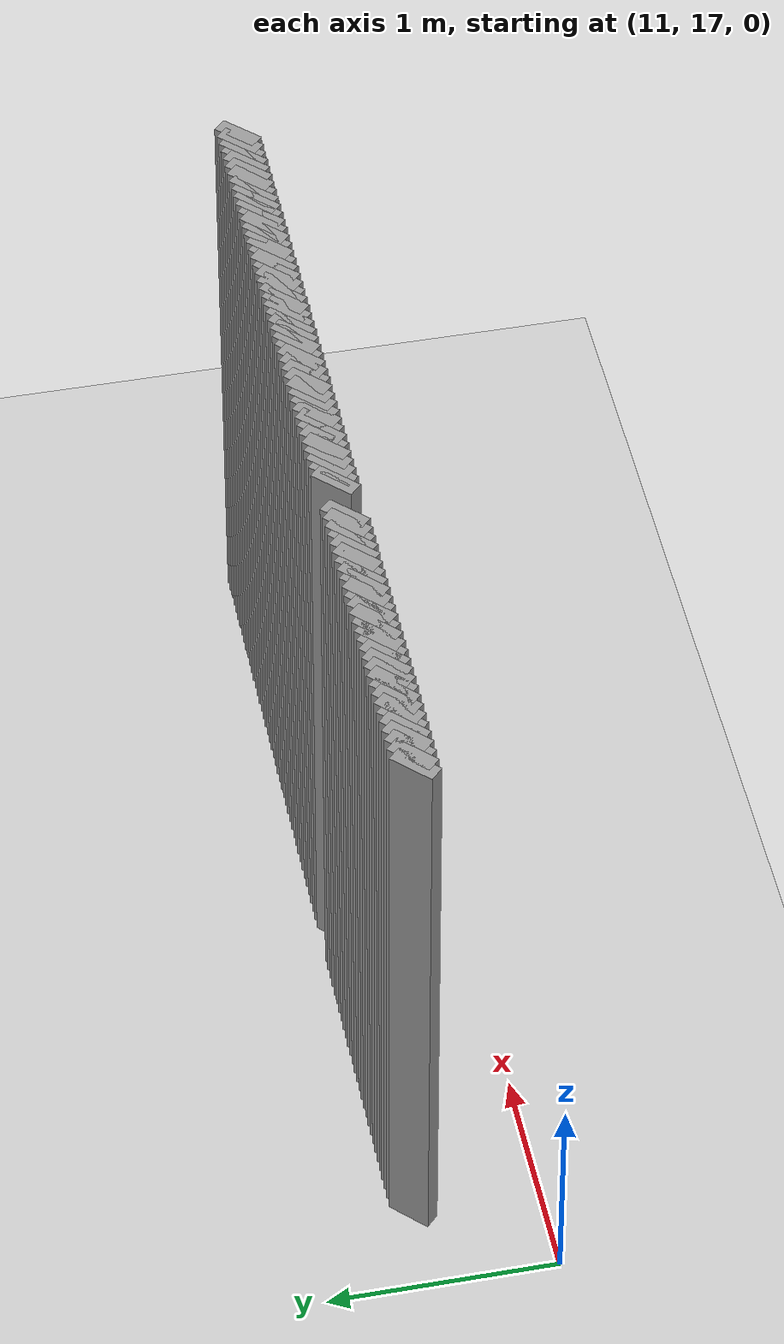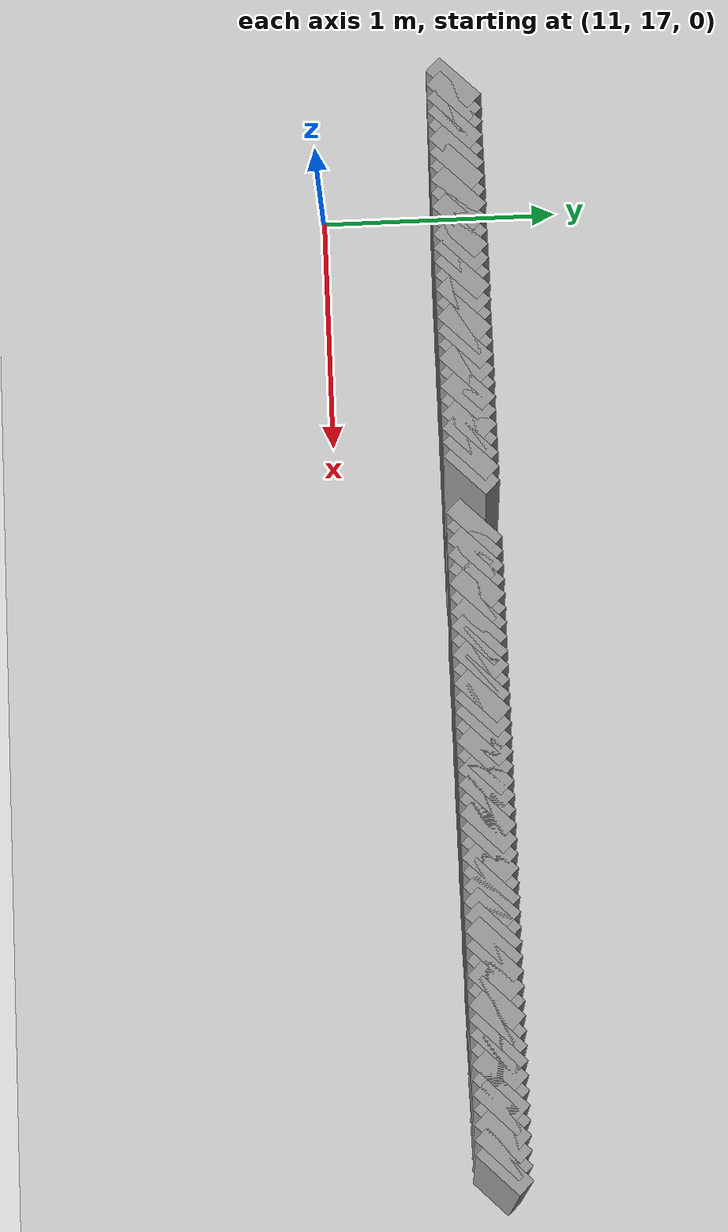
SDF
<sdf version="1.5">
 <world name="default">
  <include><uri>model://ground_plane</uri></include>
  <include><uri>model://sun</uri></include>
  <model name="grey_wall_150">
   <static>1</static>
   <link name="link">
    <pose>11.4 17.55  1.4 0 0 -0.7853981633974128</pose>
    <collision name="collision">
     <geometry><box><size>0.07071067811865325 .2  2.8</size></box></geometry>
    </collision>
    <visual name="visual">
     <cast_shadows>0</cast_shadows>
     <geometry><box><size>0.07071067811865325 .2  2.8</size></box></geometry>
     <material>
      <script>
       <uri>model://grey_wall/materials/scripts</uri>
       <uri>model://grey_wall/materials/textures</uri>
       <name>vrc/grey_wall</name>
      </script>
     </material>
    </visual>
   </link>
  </model>
  <model name="grey_wall_151">
   <static>1</static>
   <link name="link">
    <pose>11.450000000000001 17.55  1.4 0 0 -0.7853981633974128</pose>
    <collision name="collision">
     <geometry><box><size>0.07071067811865325 .2  2.8</size></box></geometry>
    </collision>
    <visual name="visual">
     <cast_shadows>0</cast_shadows>
     <geometry><box><size>0.07071067811865325 .2  2.8</size></box></geometry>
     <material>
      <script>
       <uri>model://grey_wall/materials/scripts</uri>
       <uri>model://grey_wall/materials/textures</uri>
       <name>vrc/grey_wall</name>
      </script>
     </material>
    </visual>
   </link>
  </model>
  <model name="grey_wall_152">
   <static>1</static>
   <link name="link">
    <pose>11.5 17.55  1.4 0 0 -0.7853981633974128</pose>
    <collision name="collision">
     <geometry><box><size>0.07071067811865325 .2  2.8</size></box></geometry>
    </collision>
    <visual name="visual">
     <cast_shadows>0</cast_shadows>
     <geometry><box><size>0.07071067811865325 .2  2.8</size></box></geometry>
     <material>
      <script>
       <uri>model://grey_wall/materials/scripts</uri>
       <uri>model://grey_wall/materials/textures</uri>
       <name>vrc/grey_wall</name>
      </script>
     </material>
    </visual>
   </link>
  </model>
  <model name="grey_wall_153">
   <static>1</static>
   <link name="link">
    <pose>11.55 17.55  1.4 0 0 -0.7853981633974128</pose>
    <collision name="collision">
     <geometry><box><size>0.07071067811865325 .2  2.8</size></box></geometry>
    </collision>
    <visual name="visual">
     <cast_shadows>0</cast_shadows>
     <geometry><box><size>0.07071067811865325 .2  2.8</size></box></geometry>
     <material>
      <script>
       <uri>model://grey_wall/materials/scripts</uri>
       <uri>model://grey_wall/materials/textures</uri>
       <name>vrc/grey_wall</name>
      </script>
     </material>
    </visual>
   </link>
  </model>
  <model name="grey_wall_154">
   <static>1</static>
   <link name="link">
    <pose>11.600000000000001 17.55  1.4 0 0 -0.7853981633974128</pose>
    <collision name="collision">
     <geometry><box><size>0.07071067811865325 .2  2.8</size></box></geometry>
    </collision>
    <visual name="visual">
     <cast_shadows>0</cast_shadows>
     <geometry><box><size>0.07071067811865325 .2  2.8</size></box></geometry>
     <material>
      <script>
       <uri>model://grey_wall/materials/scripts</uri>
       <uri>model://grey_wall/materials/textures</uri>
       <name>vrc/grey_wall</name>
      </script>
     </material>
    </visual>
   </link>
  </model>
  <model name="grey_wall_155">
   <static>1</static>
   <link name="link">
    <pose>11.65 17.55  1.4 0 0 -0.7853981633974128</pose>
    <collision name="collision">
     <geometry><box><size>0.07071067811865325 .2  2.8</size></box></geometry>
    </collision>
    <visual name="visual">
     <cast_shadows>0</cast_shadows>
     <geometry><box><size>0.07071067811865325 .2  2.8</size></box></geometry>
     <material>
      <script>
       <uri>model://grey_wall/materials/scripts</uri>
       <uri>model://grey_wall/materials/textures</uri>
       <name>vrc/grey_wall</name>
      </script>
     </material>
    </visual>
   </link>
  </model>
  <model name="grey_wall_156">
   <static>1</static>
   <link name="link">
    <pose>11.700000000000001 17.55  1.4 0 0 -0.7853981633974128</pose>
    <collision name="collision">
     <geometry><box><size>0.07071067811865325 .2  2.8</size></box></geometry>
    </collision>
    <visual name="visual">
     <cast_shadows>0</cast_shadows>
     <geometry><box><size>0.07071067811865325 .2  2.8</size></box></geometry>
     <material>
      <script>
       <uri>model://grey_wall/materials/scripts</uri>
       <uri>model://grey_wall/materials/textures</uri>
       <name>vrc/grey_wall</name>
      </script>
     </material>
    </visual>
   </link>
  </model>
  <model name="grey_wall_157">
   <static>1</static>
   <link name="link">
    <pose>11.75 17.55  1.4 0 0 -0.7853981633974128</pose>
    <collision name="collision">
     <geometry><box><size>0.07071067811865325 .2  2.8</size></box></geometry>
    </collision>
    <visual name="visual">
     <cast_shadows>0</cast_shadows>
     <geometry><box><size>0.07071067811865325 .2  2.8</size></box></geometry>
     <material>
      <script>
       <uri>model://grey_wall/materials/scripts</uri>
       <uri>model://grey_wall/materials/textures</uri>
       <name>vrc/grey_wall</name>
      </script>
     </material>
    </visual>
   </link>
  </model>
  <model name="grey_wall_158">
   <static>1</static>
   <link name="link">
    <pose>11.8 17.55  1.4 0 0 -0.7853981633974128</pose>
    <collision name="collision">
     <geometry><box><size>0.07071067811865325 .2  2.8</size></box></geometry>
    </collision>
    <visual name="visual">
     <cast_shadows>0</cast_shadows>
     <geometry><box><size>0.07071067811865325 .2  2.8</size></box></geometry>
     <material>
      <script>
       <uri>model://grey_wall/materials/scripts</uri>
       <uri>model://grey_wall/materials/textures</uri>
       <name>vrc/grey_wall</name>
      </script>
     </material>
    </visual>
   </link>
  </model>
  <model name="grey_wall_159">
   <static>1</static>
   <link name="link">
    <pose>11.850000000000001 17.55  1.4 0 0 -0.7853981633974128</pose>
    <collision name="collision">
     <geometry><box><size>0.07071067811865325 .2  2.8</size></box></geometry>
    </collision>
    <visual name="visual">
     <cast_shadows>0</cast_shadows>
     <geometry><box><size>0.07071067811865325 .2  2.8</size></box></geometry>
     <material>
      <script>
       <uri>model://grey_wall/materials/scripts</uri>
       <uri>model://grey_wall/materials/textures</uri>
       <name>vrc/grey_wall</name>
      </script>
     </material>
    </visual>
   </link>
  </model>
  <model name="grey_wall_160">
   <static>1</static>
   <link name="link">
    <pose>11.9 17.55  1.4 0 0 -0.7853981633974128</pose>
    <collision name="collision">
     <geometry><box><size>0.07071067811865325 .2  2.8</size></box></geometry>
    </collision>
    <visual name="visual">
     <cast_shadows>0</cast_shadows>
     <geometry><box><size>0.07071067811865325 .2  2.8</size></box></geometry>
     <material>
      <script>
       <uri>model://grey_wall/materials/scripts</uri>
       <uri>model://grey_wall/materials/textures</uri>
       <name>vrc/grey_wall</name>
      </script>
     </material>
    </visual>
   </link>
  </model>
  <model name="grey_wall_161">
   <static>1</static>
   <link name="link">
    <pose>11.950000000000001 17.55  1.4 0 0 -0.7853981633974128</pose>
    <collision name="collision">
     <geometry><box><size>0.07071067811865325 .2  2.8</size></box></geometry>
    </collision>
    <visual name="visual">
     <cast_shadows>0</cast_shadows>
     <geometry><box><size>0.07071067811865325 .2  2.8</size></box></geometry>
     <material>
      <script>
       <uri>model://grey_wall/materials/scripts</uri>
       <uri>model://grey_wall/materials/textures</uri>
       <name>vrc/grey_wall</name>
      </script>
     </material>
    </visual>
   </link>
  </model>
  <model name="grey_wall_162">
   <static>1</static>
   <link name="link">
    <pose>12.0 17.55  1.4 0 0 -0.7853981633974128</pose>
    <collision name="collision">
     <geometry><box><size>0.07071067811865325 .2  2.8</size></box></geometry>
    </collision>
    <visual name="visual">
     <cast_shadows>0</cast_shadows>
     <geometry><box><size>0.07071067811865325 .2  2.8</size></box></geometry>
     <material>
      <script>
       <uri>model://grey_wall/materials/scripts</uri>
       <uri>model://grey_wall/materials/textures</uri>
       <name>vrc/grey_wall</name>
      </script>
     </material>
    </visual>
   </link>
  </model>
  <model name="grey_wall_163">
   <static>1</static>
   <link name="link">
    <pose>12.05 17.55  1.4 0 0 -0.7853981633974128</pose>
    <collision name="collision">
     <geometry><box><size>0.07071067811865325 .2  2.8</size></box></geometry>
    </collision>
    <visual name="visual">
     <cast_shadows>0</cast_shadows>
     <geometry><box><size>0.07071067811865325 .2  2.8</size></box></geometry>
     <material>
      <script>
       <uri>model://grey_wall/materials/scripts</uri>
       <uri>model://grey_wall/materials/textures</uri>
       <name>vrc/grey_wall</name>
      </script>
     </material>
    </visual>
   </link>
  </model>
  <model name="grey_wall_164">
   <static>1</static>
   <link name="link">
    <pose>12.100000000000001 17.55  1.4 0 0 -0.7853981633974128</pose>
    <collision name="collision">
     <geometry><box><size>0.07071067811865325 .2  2.8</size></box></geometry>
    </collision>
    <visual name="visual">
     <cast_shadows>0</cast_shadows>
     <geometry><box><size>0.07071067811865325 .2  2.8</size></box></geometry>
     <material>
      <script>
       <uri>model://grey_wall/materials/scripts</uri>
       <uri>model://grey_wall/materials/textures</uri>
       <name>vrc/grey_wall</name>
      </script>
     </material>
    </visual>
   </link>
  </model>
  <model name="grey_wall_165">
   <static>1</static>
   <link name="link">
    <pose>12.15 17.55  1.4 0 0 -0.7853981633974128</pose>
    <collision name="collision">
     <geometry><box><size>0.07071067811865325 .2  2.8</size></box></geometry>
    </collision>
    <visual name="visual">
     <cast_shadows>0</cast_shadows>
     <geometry><box><size>0.07071067811865325 .2  2.8</size></box></geometry>
     <material>
      <script>
       <uri>model://grey_wall/materials/scripts</uri>
       <uri>model://grey_wall/materials/textures</uri>
       <name>vrc/grey_wall</name>
      </script>
     </material>
    </visual>
   </link>
  </model>
  <model name="grey_wall_166">
   <static>1</static>
   <link name="link">
    <pose>12.200000000000001 17.55  1.4 0 0 -0.7853981633974128</pose>
    <collision name="collision">
     <geometry><box><size>0.07071067811865325 .2  2.8</size></box></geometry>
    </collision>
    <visual name="visual">
     <cast_shadows>0</cast_shadows>
     <geometry><box><size>0.07071067811865325 .2  2.8</size></box></geometry>
     <material>
      <script>
       <uri>model://grey_wall/materials/scripts</uri>
       <uri>model://grey_wall/materials/textures</uri>
       <name>vrc/grey_wall</name>
      </script>
     </material>
    </visual>
   </link>
  </model>
  <model name="grey_wall_167">
   <static>1</static>
   <link name="link">
    <pose>12.25 17.55  1.4 0 0 -0.7853981633974128</pose>
    <collision name="collision">
     <geometry><box><size>0.07071067811865325 .2  2.8</size></box></geometry>
    </collision>
    <visual name="visual">
     <cast_shadows>0</cast_shadows>
     <geometry><box><size>0.07071067811865325 .2  2.8</size></box></geometry>
     <material>
      <script>
       <uri>model://grey_wall/materials/scripts</uri>
       <uri>model://grey_wall/materials/textures</uri>
       <name>vrc/grey_wall</name>
      </script>
     </material>
    </visual>
   </link>
  </model>
  <model name="grey_wall_168">
   <static>1</static>
   <link name="link">
    <pose>12.3 17.55  1.4 0 0 -0.7853981633974128</pose>
    <collision name="collision">
     <geometry><box><size>0.07071067811865325 .2  2.8</size></box></geometry>
    </collision>
    <visual name="visual">
     <cast_shadows>0</cast_shadows>
     <geometry><box><size>0.07071067811865325 .2  2.8</size></box></geometry>
     <material>
      <script>
       <uri>model://grey_wall/materials/scripts</uri>
       <uri>model://grey_wall/materials/textures</uri>
       <name>vrc/grey_wall</name>
      </script>
     </material>
    </visual>
   </link>
  </model>
  <model name="grey_wall_169">
   <static>1</static>
   <link name="link">
    <pose>12.350000000000001 17.55  1.4 0 0 -0.7853981633974128</pose>
    <collision name="collision">
     <geometry><box><size>0.07071067811865325 .2  2.8</size></box></geometry>
    </collision>
    <visual name="visual">
     <cast_shadows>0</cast_shadows>
     <geometry><box><size>0.07071067811865325 .2  2.8</size></box></geometry>
     <material>
      <script>
       <uri>model://grey_wall/materials/scripts</uri>
       <uri>model://grey_wall/materials/textures</uri>
       <name>vrc/grey_wall</name>
      </script>
     </material>
    </visual>
   </link>
  </model>
  <model name="grey_wall_170">
   <static>1</static>
   <link name="link">
    <pose>12.4 17.55  1.4 0 0 -0.7853981633974128</pose>
    <collision name="collision">
     <geometry><box><size>0.07071067811865325 .2  2.8</size></box></geometry>
    </collision>
    <visual name="visual">
     <cast_shadows>0</cast_shadows>
     <geometry><box><size>0.07071067811865325 .2  2.8</size></box></geometry>
     <material>
      <script>
       <uri>model://grey_wall/materials/scripts</uri>
       <uri>model://grey_wall/materials/textures</uri>
       <name>vrc/grey_wall</name>
      </script>
     </material>
    </visual>
   </link>
  </model>
  <model name="grey_wall_171">
   <static>1</static>
   <link name="link">
    <pose>12.450000000000001 17.55  1.4 0 0 -0.7853981633974128</pose>
    <collision name="collision">
     <geometry><box><size>0.07071067811865325 .2  2.8</size></box></geometry>
    </collision>
    <visual name="visual">
     <cast_shadows>0</cast_shadows>
     <geometry><box><size>0.07071067811865325 .2  2.8</size></box></geometry>
     <material>
      <script>
       <uri>model://grey_wall/materials/scripts</uri>
       <uri>model://grey_wall/materials/textures</uri>
       <name>vrc/grey_wall</name>
      </script>
     </material>
    </visual>
   </link>
  </model>
  <model name="grey_wall_172">
   <static>1</static>
   <link name="link">
    <pose>12.5 17.55  1.4 0 0 -0.7853981633974128</pose>
    <collision name="collision">
     <geometry><box><size>0.07071067811865325 .2  2.8</size></box></geometry>
    </collision>
    <visual name="visual">
     <cast_shadows>0</cast_shadows>
     <geometry><box><size>0.07071067811865325 .2  2.8</size></box></geometry>
     <material>
      <script>
       <uri>model://grey_wall/materials/scripts</uri>
       <uri>model://grey_wall/materials/textures</uri>
       <name>vrc/grey_wall</name>
      </script>
     </material>
    </visual>
   </link>
  </model>
  <model name="grey_wall_173">
   <static>1</static>
   <link name="link">
    <pose>12.55 17.55  1.4 0 0 -0.7853981633974128</pose>
    <collision name="collision">
     <geometry><box><size>0.07071067811865325 .2  2.8</size></box></geometry>
    </collision>
    <visual name="visual">
     <cast_shadows>0</cast_shadows>
     <geometry><box><size>0.07071067811865325 .2  2.8</size></box></geometry>
     <material>
      <script>
       <uri>model://grey_wall/materials/scripts</uri>
       <uri>model://grey_wall/materials/textures</uri>
       <name>vrc/grey_wall</name>
      </script>
     </material>
    </visual>
   </link>
  </model>
  <model name="grey_wall_174">
   <static>1</static>
   <link name="link">
    <pose>12.600000000000001 17.55  1.4 0 0 -0.7853981633974128</pose>
    <collision name="collision">
     <geometry><box><size>0.07071067811865325 .2  2.8</size></box></geometry>
    </collision>
    <visual name="visual">
     <cast_shadows>0</cast_shadows>
     <geometry><box><size>0.07071067811865325 .2  2.8</size></box></geometry>
     <material>
      <script>
       <uri>model://grey_wall/materials/scripts</uri>
       <uri>model://grey_wall/materials/textures</uri>
       <name>vrc/grey_wall</name>
      </script>
     </material>
    </visual>
   </link>
  </model>
  <model name="grey_wall_175">
   <static>1</static>
   <link name="link">
    <pose>12.65 17.55  1.4 0 0 -0.7853981633974128</pose>
    <collision name="collision">
     <geometry><box><size>0.07071067811865325 .2  2.8</size></box></geometry>
    </collision>
    <visual name="visual">
     <cast_shadows>0</cast_shadows>
     <geometry><box><size>0.07071067811865325 .2  2.8</size></box></geometry>
     <material>
      <script>
       <uri>model://grey_wall/materials/scripts</uri>
       <uri>model://grey_wall/materials/textures</uri>
       <name>vrc/grey_wall</name>
      </script>
     </material>
    </visual>
   </link>
  </model>
  <model name="grey_wall_176">
   <static>1</static>
   <link name="link">
    <pose>12.700000000000001 17.55  1.4 0 0 -0.7853981633974128</pose>
    <collision name="collision">
     <geometry><box><size>0.07071067811865325 .2  2.8</size></box></geometry>
    </collision>
    <visual name="visual">
     <cast_shadows>0</cast_shadows>
     <geometry><box><size>0.07071067811865325 .2  2.8</size></box></geometry>
     <material>
      <script>
       <uri>model://grey_wall/materials/scripts</uri>
       <uri>model://grey_wall/materials/textures</uri>
       <name>vrc/grey_wall</name>
      </script>
     </material>
    </visual>
   </link>
  </model>
  <model name="grey_wall_177">
   <static>1</static>
   <link name="link">
    <pose>12.75 17.55  1.4 0 0 -0.7853981633974128</pose>
    <collision name="collision">
     <geometry><box><size>0.07071067811865325 .2  2.8</size></box></geometry>
    </collision>
    <visual name="visual">
     <cast_shadows>0</cast_shadows>
     <geometry><box><size>0.07071067811865325 .2  2.8</size></box></geometry>
     <material>
      <script>
       <uri>model://grey_wall/materials/scripts</uri>
       <uri>model://grey_wall/materials/textures</uri>
       <name>vrc/grey_wall</name>
      </script>
     </material>
    </visual>
   </link>
  </model>
  <model name="grey_wall_178">
   <static>1</static>
   <link name="link">
    <pose>12.8 17.55  1.4 0 0 -0.7853981633974128</pose>
    <collision name="collision">
     <geometry><box><size>0.07071067811865325 .2  2.8</size></box></geometry>
    </collision>
    <visual name="visual">
     <cast_shadows>0</cast_shadows>
     <geometry><box><size>0.07071067811865325 .2  2.8</size></box></geometry>
     <material>
      <script>
       <uri>model://grey_wall/materials/scripts</uri>
       <uri>model://grey_wall/materials/textures</uri>
       <name>vrc/grey_wall</name>
      </script>
     </material>
    </visual>
   </link>
  </model>
  <model name="grey_wall_179">
   <static>1</static>
   <link name="link">
    <pose>13.0 17.55  1.4 0 0 -0.7853981633974128</pose>
    <collision name="collision">
     <geometry><box><size>0.07071067811865325 .2  2.8</size></box></geometry>
    </collision>
    <visual name="visual">
     <cast_shadows>0</cast_shadows>
     <geometry><box><size>0.07071067811865325 .2  2.8</size></box></geometry>
     <material>
      <script>
       <uri>model://grey_wall/materials/scripts</uri>
       <uri>model://grey_wall/materials/textures</uri>
       <name>vrc/grey_wall</name>
      </script>
     </material>
    </visual>
   </link>
  </model>
  <model name="grey_wall_180">
   <static>1</static>
   <link name="link">
    <pose>13.05 17.55  1.4 0 0 -0.7853981633974128</pose>
    <collision name="collision">
     <geometry><box><size>0.07071067811865325 .2  2.8</size></box></geometry>
    </collision>
    <visual name="visual">
     <cast_shadows>0</cast_shadows>
     <geometry><box><size>0.07071067811865325 .2  2.8</size></box></geometry>
     <material>
      <script>
       <uri>model://grey_wall/materials/scripts</uri>
       <uri>model://grey_wall/materials/textures</uri>
       <name>vrc/grey_wall</name>
      </script>
     </material>
    </visual>
   </link>
  </model>
  <model name="grey_wall_181">
   <static>1</static>
   <link name="link">
    <pose>13.100000000000001 17.55  1.4 0 0 -0.7853981633974128</pose>
    <collision name="collision">
     <geometry><box><size>0.07071067811865325 .2  2.8</size></box></geometry>
    </collision>
    <visual name="visual">
     <cast_shadows>0</cast_shadows>
     <geometry><box><size>0.07071067811865325 .2  2.8</size></box></geometry>
     <material>
      <script>
       <uri>model://grey_wall/materials/scripts</uri>
       <uri>model://grey_wall/materials/textures</uri>
       <name>vrc/grey_wall</name>
      </script>
     </material>
    </visual>
   </link>
  </model>
  <model name="grey_wall_182">
   <static>1</static>
   <link name="link">
    <pose>13.15 17.55  1.4 0 0 -0.7853981633974128</pose>
    <collision name="collision">
     <geometry><box><size>0.07071067811865325 .2  2.8</size></box></geometry>
    </collision>
    <visual name="visual">
     <cast_shadows>0</cast_shadows>
     <geometry><box><size>0.07071067811865325 .2  2.8</size></box></geometry>
     <material>
      <script>
       <uri>model://grey_wall/materials/scripts</uri>
       <uri>model://grey_wall/materials/textures</uri>
       <name>vrc/grey_wall</name>
      </script>
     </material>
    </visual>
   </link>
  </model>
  <model name="grey_wall_183">
   <static>1</static>
   <link name="link">
    <pose>13.200000000000001 17.55  1.4 0 0 -0.7853981633974128</pose>
    <collision name="collision">
     <geometry><box><size>0.07071067811865325 .2  2.8</size></box></geometry>
    </collision>
    <visual name="visual">
     <cast_shadows>0</cast_shadows>
     <geometry><box><size>0.07071067811865325 .2  2.8</size></box></geometry>
     <material>
      <script>
       <uri>model://grey_wall/materials/scripts</uri>
       <uri>model://grey_wall/materials/textures</uri>
       <name>vrc/grey_wall</name>
      </script>
     </material>
    </visual>
   </link>
  </model>
  <model name="grey_wall_184">
   <static>1</static>
   <link name="link">
    <pose>13.25 17.55  1.4 0 0 -0.7853981633974128</pose>
    <collision name="collision">
     <geometry><box><size>0.07071067811865325 .2  2.8</size></box></geometry>
    </collision>
    <visual name="visual">
     <cast_shadows>0</cast_shadows>
     <geometry><box><size>0.07071067811865325 .2  2.8</size></box></geometry>
     <material>
      <script>
       <uri>model://grey_wall/materials/scripts</uri>
       <uri>model://grey_wall/materials/textures</uri>
       <name>vrc/grey_wall</name>
      </script>
     </material>
    </visual>
   </link>
  </model>
  <model name="grey_wall_185">
   <static>1</static>
   <link name="link">
    <pose>13.3 17.55  1.4 0 0 -0.7853981633974128</pose>
    <collision name="collision">
     <geometry><box><size>0.07071067811865325 .2  2.8</size></box></geometry>
    </collision>
    <visual name="visual">
     <cast_shadows>0</cast_shadows>
     <geometry><box><size>0.07071067811865325 .2  2.8</size></box></geometry>
     <material>
      <script>
       <uri>model://grey_wall/materials/scripts</uri>
       <uri>model://grey_wall/materials/textures</uri>
       <name>vrc/grey_wall</name>
      </script>
     </material>
    </visual>
   </link>
  </model>
  <model name="grey_wall_186">
   <static>1</static>
   <link name="link">
    <pose>13.350000000000001 17.55  1.4 0 0 -0.7853981633974128</pose>
    <collision name="collision">
     <geometry><box><size>0.07071067811865325 .2  2.8</size></box></geometry>
    </collision>
    <visual name="visual">
     <cast_shadows>0</cast_shadows>
     <geometry><box><size>0.07071067811865325 .2  2.8</size></box></geometry>
     <material>
      <script>
       <uri>model://grey_wall/materials/scripts</uri>
       <uri>model://grey_wall/materials/textures</uri>
       <name>vrc/grey_wall</name>
      </script>
     </material>
    </visual>
   </link>
  </model>
  <model name="grey_wall_187">
   <static>1</static>
   <link name="link">
    <pose>13.4 17.55  1.4 0 0 -0.7853981633974128</pose>
    <collision name="collision">
     <geometry><box><size>0.07071067811865325 .2  2.8</size></box></geometry>
    </collision>
    <visual name="visual">
     <cast_shadows>0</cast_shadows>
     <geometry><box><size>0.07071067811865325 .2  2.8</size></box></geometry>
     <material>
      <script>
       <uri>model://grey_wall/materials/scripts</uri>
       <uri>model://grey_wall/materials/textures</uri>
       <name>vrc/grey_wall</name>
      </script>
     </material>
    </visual>
   </link>
  </model>
  <model name="grey_wall_188">
   <static>1</static>
   <link name="link">
    <pose>13.450000000000001 17.55  1.4 0 0 -0.7853981633974128</pose>
    <collision name="collision">
     <geometry><box><size>0.07071067811865325 .2  2.8</size></box></geometry>
    </collision>
    <visual name="visual">
     <cast_shadows>0</cast_shadows>
     <geometry><box><size>0.07071067811865325 .2  2.8</size></box></geometry>
     <material>
      <script>
       <uri>model://grey_wall/materials/scripts</uri>
       <uri>model://grey_wall/materials/textures</uri>
       <name>vrc/grey_wall</name>
      </script>
     </material>
    </visual>
   </link>
  </model>
  <model name="grey_wall_189">
   <static>1</static>
   <link name="link">
    <pose>13.5 17.55  1.4 0 0 -0.7853981633974128</pose>
    <collision name="collision">
     <geometry><box><size>0.07071067811865325 .2  2.8</size></box></geometry>
    </collision>
    <visual name="visual">
     <cast_shadows>0</cast_shadows>
     <geometry><box><size>0.07071067811865325 .2  2.8</size></box></geometry>
     <material>
      <script>
       <uri>model://grey_wall/materials/scripts</uri>
       <uri>model://grey_wall/materials/textures</uri>
       <name>vrc/grey_wall</name>
      </script>
     </material>
    </visual>
   </link>
  </model>
  <model name="grey_wall_190">
   <static>1</static>
   <link name="link">
    <pose>13.55 17.55  1.4 0 0 -0.7853981633974128</pose>
    <collision name="collision">
     <geometry><box><size>0.07071067811865325 .2  2.8</size></box></geometry>
    </collision>
    <visual name="visual">
     <cast_shadows>0</cast_shadows>
     <geometry><box><size>0.07071067811865325 .2  2.8</size></box></geometry>
     <material>
      <script>
       <uri>model://grey_wall/materials/scripts</uri>
       <uri>model://grey_wall/materials/textures</uri>
       <name>vrc/grey_wall</name>
      </script>
     </material>
    </visual>
   </link>
  </model>
  <model name="grey_wall_191">
   <static>1</static>
   <link name="link">
    <pose>13.600000000000001 17.55  1.4 0 0 -0.7853981633974128</pose>
    <collision name="collision">
     <geometry><box><size>0.07071067811865325 .2  2.8</size></box></geometry>
    </collision>
    <visual name="visual">
     <cast_shadows>0</cast_shadows>
     <geometry><box><size>0.07071067811865325 .2  2.8</size></box></geometry>
     <material>
      <script>
       <uri>model://grey_wall/materials/scripts</uri>
       <uri>model://grey_wall/materials/textures</uri>
       <name>vrc/grey_wall</name>
      </script>
     </material>
    </visual>
   </link>
  </model>
  <model name="grey_wall_192">
   <static>1</static>
   <link name="link">
    <pose>13.65 17.55  1.4 0 0 -0.7853981633974128</pose>
    <collision name="collision">
     <geometry><box><size>0.07071067811865325 .2  2.8</size></box></geometry>
    </collision>
    <visual name="visual">
     <cast_shadows>0</cast_shadows>
     <geometry><box><size>0.07071067811865325 .2  2.8</size></box></geometry>
     <material>
      <script>
       <uri>model://grey_wall/materials/scripts</uri>
       <uri>model://grey_wall/materials/textures</uri>
       <name>vrc/grey_wall</name>
      </script>
     </material>
    </visual>
   </link>
  </model>
  <model name="grey_wall_193">
   <static>1</static>
   <link name="link">
    <pose>13.700000000000001 17.55  1.4 0 0 -0.7853981633974128</pose>
    <collision name="collision">
     <geometry><box><size>0.07071067811865325 .2  2.8</size></box></geometry>
    </collision>
    <visual name="visual">
     <cast_shadows>0</cast_shadows>
     <geometry><box><size>0.07071067811865325 .2  2.8</size></box></geometry>
     <material>
      <script>
       <uri>model://grey_wall/materials/scripts</uri>
       <uri>model://grey_wall/materials/textures</uri>
       <name>vrc/grey_wall</name>
      </script>
     </material>
    </visual>
   </link>
  </model>
  <model name="grey_wall_194">
   <static>1</static>
   <link name="link">
    <pose>13.75 17.55  1.4 0 0 -0.7853981633974128</pose>
    <collision name="collision">
     <geometry><box><size>0.07071067811865325 .2  2.8</size></box></geometry>
    </collision>
    <visual name="visual">
     <cast_shadows>0</cast_shadows>
     <geometry><box><size>0.07071067811865325 .2  2.8</size></box></geometry>
     <material>
      <script>
       <uri>model://grey_wall/materials/scripts</uri>
       <uri>model://grey_wall/materials/textures</uri>
       <name>vrc/grey_wall</name>
      </script>
     </material>
    </visual>
   </link>
  </model>
  <model name="grey_wall_195">
   <static>1</static>
   <link name="link">
    <pose>13.8 17.55  1.4 0 0 -0.7853981633974128</pose>
    <collision name="collision">
     <geometry><box><size>0.07071067811865325 .2  2.8</size></box></geometry>
    </collision>
    <visual name="visual">
     <cast_shadows>0</cast_shadows>
     <geometry><box><size>0.07071067811865325 .2  2.8</size></box></geometry>
     <material>
      <script>
       <uri>model://grey_wall/materials/scripts</uri>
       <uri>model://grey_wall/materials/textures</uri>
       <name>vrc/grey_wall</name>
      </script>
     </material>
    </visual>
   </link>
  </model>
  <model name="grey_wall_196">
   <static>1</static>
   <link name="link">
    <pose>13.850000000000001 17.55  1.4 0 0 -0.7853981633974128</pose>
    <collision name="collision">
     <geometry><box><size>0.07071067811865325 .2  2.8</size></box></geometry>
    </collision>
    <visual name="visual">
     <cast_shadows>0</cast_shadows>
     <geometry><box><size>0.07071067811865325 .2  2.8</size></box></geometry>
     <material>
      <script>
       <uri>model://grey_wall/materials/scripts</uri>
       <uri>model://grey_wall/materials/textures</uri>
       <name>vrc/grey_wall</name>
      </script>
     </material>
    </visual>
   </link>
  </model>
  <model name="grey_wall_197">
   <static>1</static>
   <link name="link">
    <pose>13.9 17.55  1.4 0 0 -0.7853981633974128</pose>
    <collision name="collision">
     <geometry><box><size>0.07071067811865325 .2  2.8</size></box></geometry>
    </collision>
    <visual name="visual">
     <cast_shadows>0</cast_shadows>
     <geometry><box><size>0.07071067811865325 .2  2.8</size></box></geometry>
     <material>
      <script>
       <uri>model://grey_wall/materials/scripts</uri>
       <uri>model://grey_wall/materials/textures</uri>
       <name>vrc/grey_wall</name>
      </script>
     </material>
    </visual>
   </link>
  </model>
  <model name="grey_wall_198">
   <static>1</static>
   <link name="link">
    <pose>13.950000000000001 17.55  1.4 0 0 -0.7853981633974128</pose>
    <collision name="collision">
     <geometry><box><size>0.07071067811865325 .2  2.8</size></box></geometry>
    </collision>
    <visual name="visual">
     <cast_shadows>0</cast_shadows>
     <geometry><box><size>0.07071067811865325 .2  2.8</size></box></geometry>
     <material>
      <script>
       <uri>model://grey_wall/materials/scripts</uri>
       <uri>model://grey_wall/materials/textures</uri>
       <name>vrc/grey_wall</name>
      </script>
     </material>
    </visual>
   </link>
  </model>
  <model name="grey_wall_199">
   <static>1</static>
   <link name="link">
    <pose>14.0 17.55  1.4 0 0 -0.7853981633974128</pose>
    <collision name="collision">
     <geometry><box><size>0.07071067811865325 .2  2.8</size></box></geometry>
    </collision>
    <visual name="visual">
     <cast_shadows>0</cast_shadows>
     <geometry><box><size>0.07071067811865325 .2  2.8</size></box></geometry>
     <material>
      <script>
       <uri>model://grey_wall/materials/scripts</uri>
       <uri>model://grey_wall/materials/textures</uri>
       <name>vrc/grey_wall</name>
      </script>
     </material>
    </visual>
   </link>
  </model>
  <model name="grey_wall_200">
   <static>1</static>
   <link name="link">
    <pose>14.05 17.55  1.4 0 0 -0.7853981633974128</pose>
    <collision name="collision">
     <geometry><box><size>0.07071067811865325 .2  2.8</size></box></geometry>
    </collision>
    <visual name="visual">
     <cast_shadows>0</cast_shadows>
     <geometry><box><size>0.07071067811865325 .2  2.8</size></box></geometry>
     <material>
      <script>
       <uri>model://grey_wall/materials/scripts</uri>
       <uri>model://grey_wall/materials/textures</uri>
       <name>vrc/grey_wall</name>
      </script>
     </material>
    </visual>
   </link>
  </model>
  <model name="grey_wall_201">
   <static>1</static>
   <link name="link">
    <pose>14.100000000000001 17.55  1.4 0 0 -0.7853981633974128</pose>
    <collision name="collision">
     <geometry><box><size>0.07071067811865325 .2  2.8</size></box></geometry>
    </collision>
    <visual name="visual">
     <cast_shadows>0</cast_shadows>
     <geometry><box><size>0.07071067811865325 .2  2.8</size></box></geometry>
     <material>
      <script>
       <uri>model://grey_wall/materials/scripts</uri>
       <uri>model://grey_wall/materials/textures</uri>
       <name>vrc/grey_wall</name>
      </script>
     </material>
    </visual>
   </link>
  </model>
  <model name="grey_wall_202">
   <static>1</static>
   <link name="link">
    <pose>14.15 17.55  1.4 0 0 -0.7853981633974128</pose>
    <collision name="collision">
     <geometry><box><size>0.07071067811865325 .2  2.8</size></box></geometry>
    </collision>
    <visual name="visual">
     <cast_shadows>0</cast_shadows>
     <geometry><box><size>0.07071067811865325 .2  2.8</size></box></geometry>
     <material>
      <script>
       <uri>model://grey_wall/materials/scripts</uri>
       <uri>model://grey_wall/materials/textures</uri>
       <name>vrc/grey_wall</name>
      </script>
     </material>
    </visual>
   </link>
  </model>
  <model name="grey_wall_203">
   <static>1</static>
   <link name="link">
    <pose>14.200000000000001 17.55  1.4 0 0 -0.7853981633974128</pose>
    <collision name="collision">
     <geometry><box><size>0.07071067811865325 .2  2.8</size></box></geometry>
    </collision>
    <visual name="visual">
     <cast_shadows>0</cast_shadows>
     <geometry><box><size>0.07071067811865325 .2  2.8</size></box></geometry>
     <material>
      <script>
       <uri>model://grey_wall/materials/scripts</uri>
       <uri>model://grey_wall/materials/textures</uri>
       <name>vrc/grey_wall</name>
      </script>
     </material>
    </visual>
   </link>
  </model>
  <model name="grey_wall_204">
   <static>1</static>
   <link name="link">
    <pose>14.25 17.55  1.4 0 0 -0.7853981633974128</pose>
    <collision name="collision">
     <geometry><box><size>0.07071067811865325 .2  2.8</size></box></geometry>
    </collision>
    <visual name="visual">
     <cast_shadows>0</cast_shadows>
     <geometry><box><size>0.07071067811865325 .2  2.8</size></box></geometry>
     <material>
      <script>
       <uri>model://grey_wall/materials/scripts</uri>
       <uri>model://grey_wall/materials/textures</uri>
       <name>vrc/grey_wall</name>
      </script>
     </material>
    </visual>
   </link>
  </model>
  <model name="grey_wall_205">
   <static>1</static>
   <link name="link">
    <pose>14.3 17.55  1.4 0 0 -0.7853981633974128</pose>
    <collision name="collision">
     <geometry><box><size>0.07071067811865325 .2  2.8</size></box></geometry>
    </collision>
    <visual name="visual">
     <cast_shadows>0</cast_shadows>
     <geometry><box><size>0.07071067811865325 .2  2.8</size></box></geometry>
     <material>
      <script>
       <uri>model://grey_wall/materials/scripts</uri>
       <uri>model://grey_wall/materials/textures</uri>
       <name>vrc/grey_wall</name>
      </script>
     </material>
    </visual>
   </link>
  </model>
  <model name="grey_wall_206">
   <static>1</static>
   <link name="link">
    <pose>14.350000000000001 17.55  1.4 0 0 -0.7853981633974128</pose>
    <collision name="collision">
     <geometry><box><size>0.07071067811865325 .2  2.8</size></box></geometry>
    </collision>
    <visual name="visual">
     <cast_shadows>0</cast_shadows>
     <geometry><box><size>0.07071067811865325 .2  2.8</size></box></geometry>
     <material>
      <script>
       <uri>model://grey_wall/materials/scripts</uri>
       <uri>model://grey_wall/materials/textures</uri>
       <name>vrc/grey_wall</name>
      </script>
     </material>
    </visual>
   </link>
  </model>
  <model name="grey_wall_207">
   <static>1</static>
   <link name="link">
    <pose>14.4 17.55  1.4 0 0 -0.7853981633974128</pose>
    <collision name="collision">
     <geometry><box><size>0.07071067811865325 .2  2.8</size></box></geometry>
    </collision>
    <visual name="visual">
     <cast_shadows>0</cast_shadows>
     <geometry><box><size>0.07071067811865325 .2  2.8</size></box></geometry>
     <material>
      <script>
       <uri>model://grey_wall/materials/scripts</uri>
       <uri>model://grey_wall/materials/textures</uri>
       <name>vrc/grey_wall</name>
      </script>
     </material>
    </visual>
   </link>
  </model>
  <model name="grey_wall_208">
   <static>1</static>
   <link name="link">
    <pose>14.450000000000001 17.55  1.4 0 0 -0.7853981633974128</pose>
    <collision name="collision">
     <geometry><box><size>0.07071067811865325 .2  2.8</size></box></geometry>
    </collision>
    <visual name="visual">
     <cast_shadows>0</cast_shadows>
     <geometry><box><size>0.07071067811865325 .2  2.8</size></box></geometry>
     <material>
      <script>
       <uri>model://grey_wall/materials/scripts</uri>
       <uri>model://grey_wall/materials/textures</uri>
       <name>vrc/grey_wall</name>
      </script>
     </material>
    </visual>
   </link>
  </model>
  <model name="grey_wall_209">
   <static>1</static>
   <link name="link">
    <pose>14.5 17.55  1.4 0 0 -0.7853981633974128</pose>
    <collision name="collision">
     <geometry><box><size>0.07071067811865325 .2  2.8</size></box></geometry>
    </collision>
    <visual name="visual">
     <cast_shadows>0</cast_shadows>
     <geometry><box><size>0.07071067811865325 .2  2.8</size></box></geometry>
     <material>
      <script>
       <uri>model://grey_wall/materials/scripts</uri>
       <uri>model://grey_wall/materials/textures</uri>
       <name>vrc/grey_wall</name>
      </script>
     </material>
    </visual>
   </link>
  </model>
  <model name="grey_wall_210">
   <static>1</static>
   <link name="link">
    <pose>14.55 17.55  1.4 0 0 -0.7853981633974128</pose>
    <collision name="collision">
     <geometry><box><size>0.07071067811865325 .2  2.8</size></box></geometry>
    </collision>
    <visual name="visual">
     <cast_shadows>0</cast_shadows>
     <geometry><box><size>0.07071067811865325 .2  2.8</size></box></geometry>
     <material>
      <script>
       <uri>model://grey_wall/materials/scripts</uri>
       <uri>model://grey_wall/materials/textures</uri>
       <name>vrc/grey_wall</name>
      </script>
     </material>
    </visual>
   </link>
  </model>
  <model name="grey_wall_211">
   <static>1</static>
   <link name="link">
    <pose>14.600000000000001 17.55  1.4 0 0 -0.7853981633974128</pose>
    <collision name="collision">
     <geometry><box><size>0.07071067811865325 .2  2.8</size></box></geometry>
    </collision>
    <visual name="visual">
     <cast_shadows>0</cast_shadows>
     <geometry><box><size>0.07071067811865325 .2  2.8</size></box></geometry>
     <material>
      <script>
       <uri>model://grey_wall/materials/scripts</uri>
       <uri>model://grey_wall/materials/textures</uri>
       <name>vrc/grey_wall</name>
      </script>
     </material>
    </visual>
   </link>
  </model>
  <model name="grey_wall_212">
   <static>1</static>
   <link name="link">
    <pose>14.65 17.55  1.4 0 0 -0.7853981633974128</pose>
    <collision name="collision">
     <geometry><box><size>0.07071067811865325 .2  2.8</size></box></geometry>
    </collision>
    <visual name="visual">
     <cast_shadows>0</cast_shadows>
     <geometry><box><size>0.07071067811865325 .2  2.8</size></box></geometry>
     <material>
      <script>
       <uri>model://grey_wall/materials/scripts</uri>
       <uri>model://grey_wall/materials/textures</uri>
       <name>vrc/grey_wall</name>
      </script>
     </material>
    </visual>
   </link>
  </model>
  <model name="grey_wall_213">
   <static>1</static>
   <link name="link">
    <pose>14.700000000000001 17.55  1.4 0 0 -0.7853981633974128</pose>
    <collision name="collision">
     <geometry><box><size>0.07071067811865325 .2  2.8</size></box></geometry>
    </collision>
    <visual name="visual">
     <cast_shadows>0</cast_shadows>
     <geometry><box><size>0.07071067811865325 .2  2.8</size></box></geometry>
     <material>
      <script>
       <uri>model://grey_wall/materials/scripts</uri>
       <uri>model://grey_wall/materials/textures</uri>
       <name>vrc/grey_wall</name>
      </script>
     </material>
    </visual>
   </link>
  </model>
  <model name="grey_wall_214">
   <static>1</static>
   <link name="link">
    <pose>14.75 17.55  1.4 0 0 -0.7853981633974128</pose>
    <collision name="collision">
     <geometry><box><size>0.07071067811865325 .2  2.8</size></box></geometry>
    </collision>
    <visual name="visual">
     <cast_shadows>0</cast_shadows>
     <geometry><box><size>0.07071067811865325 .2  2.8</size></box></geometry>
     <material>
      <script>
       <uri>model://grey_wall/materials/scripts</uri>
       <uri>model://grey_wall/materials/textures</uri>
       <name>vrc/grey_wall</name>
      </script>
     </material>
    </visual>
   </link>
  </model>
  <model name="grey_wall_215">
   <static>1</static>
   <link name="link">
    <pose>14.8 17.55  1.4 0 0 -0.7853981633974128</pose>
    <collision name="collision">
     <geometry><box><size>0.07071067811865325 .2  2.8</size></box></geometry>
    </collision>
    <visual name="visual">
     <cast_shadows>0</cast_shadows>
     <geometry><box><size>0.07071067811865325 .2  2.8</size></box></geometry>
     <material>
      <script>
       <uri>model://grey_wall/materials/scripts</uri>
       <uri>model://grey_wall/materials/textures</uri>
       <name>vrc/grey_wall</name>
      </script>
     </material>
    </visual>
   </link>
  </model>
  <model name="grey_wall_216">
   <static>1</static>
   <link name="link">
    <pose>14.850000000000001 17.55  1.4 0 0 -0.7853981633974128</pose>
    <collision name="collision">
     <geometry><box><size>0.07071067811865325 .2  2.8</size></box></geometry>
    </collision>
    <visual name="visual">
     <cast_shadows>0</cast_shadows>
     <geometry><box><size>0.07071067811865325 .2  2.8</size></box></geometry>
     <material>
      <script>
       <uri>model://grey_wall/materials/scripts</uri>
       <uri>model://grey_wall/materials/textures</uri>
       <name>vrc/grey_wall</name>
      </script>
     </material>
    </visual>
   </link>
  </model>
  <model name="grey_wall_217">
   <static>1</static>
   <link name="link">
    <pose>14.9 17.55  1.4 0 0 -0.7853981633974128</pose>
    <collision name="collision">
     <geometry><box><size>0.07071067811865325 .2  2.8</size></box></geometry>
    </collision>
    <visual name="visual">
     <cast_shadows>0</cast_shadows>
     <geometry><box><size>0.07071067811865325 .2  2.8</size></box></geometry>
     <material>
      <script>
       <uri>model://grey_wall/materials/scripts</uri>
       <uri>model://grey_wall/materials/textures</uri>
       <name>vrc/grey_wall</name>
      </script>
     </material>
    </visual>
   </link>
  </model>
  <model name="grey_wall_218">
   <static>1</static>
   <link name="link">
    <pose>14.950000000000001 17.55  1.4 0 0 -0.7853981633974128</pose>
    <collision name="collision">
     <geometry><box><size>0.07071067811865325 .2  2.8</size></box></geometry>
    </collision>
    <visual name="visual">
     <cast_shadows>0</cast_shadows>
     <geometry><box><size>0.07071067811865325 .2  2.8</size></box></geometry>
     <material>
      <script>
       <uri>model://grey_wall/materials/scripts</uri>
       <uri>model://grey_wall/materials/textures</uri>
       <name>vrc/grey_wall</name>
      </script>
     </material>
    </visual>
   </link>
  </model>
  <model name="grey_wall_219">
   <static>1</static>
   <link name="link">
    <pose>15.0 17.55  1.4 0 0 -0.7853981633974128</pose>
    <collision name="collision">
     <geometry><box><size>0.07071067811865325 .2  2.8</size></box></geometry>
    </collision>
    <visual name="visual">
     <cast_shadows>0</cast_shadows>
     <geometry><box><size>0.07071067811865325 .2  2.8</size></box></geometry>
     <material>
      <script>
       <uri>model://grey_wall/materials/scripts</uri>
       <uri>model://grey_wall/materials/textures</uri>
       <name>vrc/grey_wall</name>
      </script>
     </material>
    </visual>
   </link>
  </model>
  <model name="grey_wall_220">
   <static>1</static>
   <link name="link">
    <pose>15.05 17.55  1.4 0 0 -0.7853981633974128</pose>
    <collision name="collision">
     <geometry><box><size>0.07071067811865325 .2  2.8</size></box></geometry>
    </collision>
    <visual name="visual">
     <cast_shadows>0</cast_shadows>
     <geometry><box><size>0.07071067811865325 .2  2.8</size></box></geometry>
     <material>
      <script>
       <uri>model://grey_wall/materials/scripts</uri>
       <uri>model://grey_wall/materials/textures</uri>
       <name>vrc/grey_wall</name>
      </script>
     </material>
    </visual>
   </link>
  </model>
  <model name="grey_wall_221">
   <static>1</static>
   <link name="link">
    <pose>15.100000000000001 17.55  1.4 0 0 -0.7853981633974128</pose>
    <collision name="collision">
     <geometry><box><size>0.07071067811865325 .2  2.8</size></box></geometry>
    </collision>
    <visual name="visual">
     <cast_shadows>0</cast_shadows>
     <geometry><box><size>0.07071067811865325 .2  2.8</size></box></geometry>
     <material>
      <script>
       <uri>model://grey_wall/materials/scripts</uri>
       <uri>model://grey_wall/materials/textures</uri>
       <name>vrc/grey_wall</name>
      </script>
     </material>
    </visual>
   </link>
  </model>
  <model name="grey_wall_222">
   <static>1</static>
   <link name="link">
    <pose>15.15 17.55  1.4 0 0 -0.7853981633974128</pose>
    <collision name="collision">
     <geometry><box><size>0.07071067811865325 .2  2.8</size></box></geometry>
    </collision>
    <visual name="visual">
     <cast_shadows>0</cast_shadows>
     <geometry><box><size>0.07071067811865325 .2  2.8</size></box></geometry>
     <material>
      <script>
       <uri>model://grey_wall/materials/scripts</uri>
       <uri>model://grey_wall/materials/textures</uri>
       <name>vrc/grey_wall</name>
      </script>
     </material>
    </visual>
   </link>
  </model>
  <model name="grey_wall_223">
   <static>1</static>
   <link name="link">
    <pose>15.200000000000001 17.55  1.4 0 0 -0.7853981633974128</pose>
    <collision name="collision">
     <geometry><box><size>0.07071067811865325 .2  2.8</size></box></geometry>
    </collision>
    <visual name="visual">
     <cast_shadows>0</cast_shadows>
     <geometry><box><size>0.07071067811865325 .2  2.8</size></box></geometry>
     <material>
      <script>
       <uri>model://grey_wall/materials/scripts</uri>
       <uri>model://grey_wall/materials/textures</uri>
       <name>vrc/grey_wall</name>
      </script>
     </material>
    </visual>
   </link>
  </model>
 </world>
</sdf>
